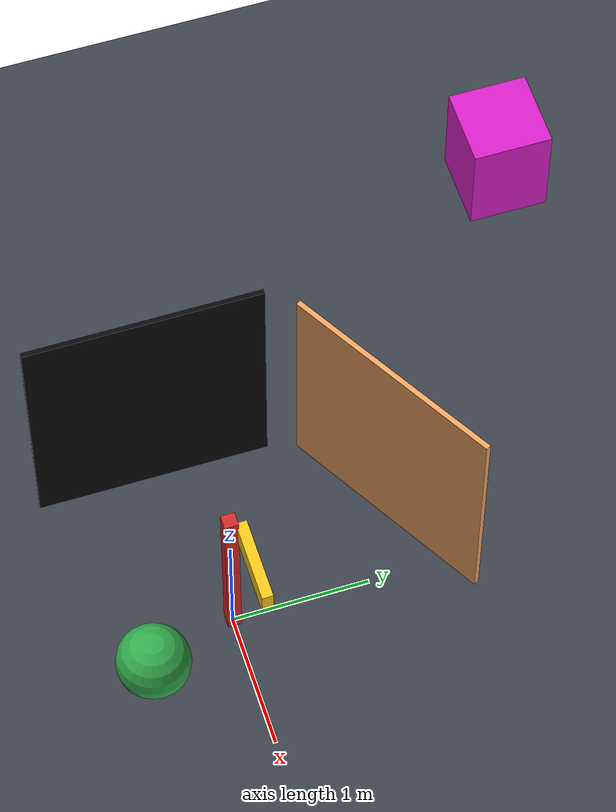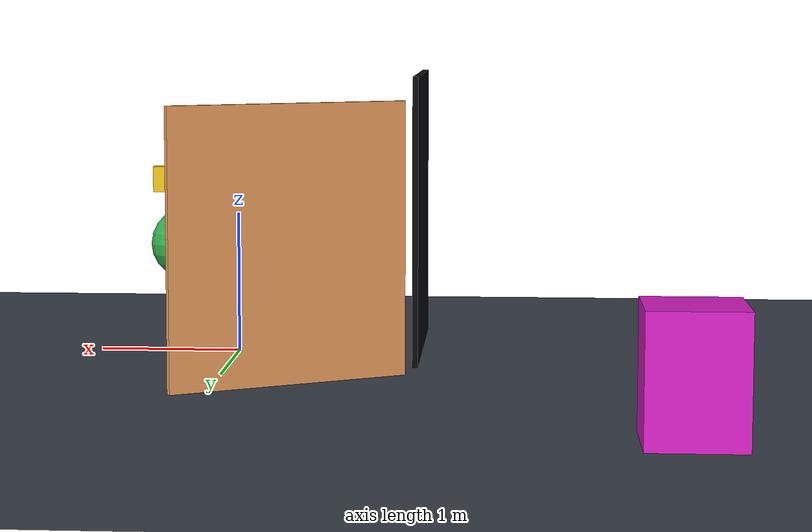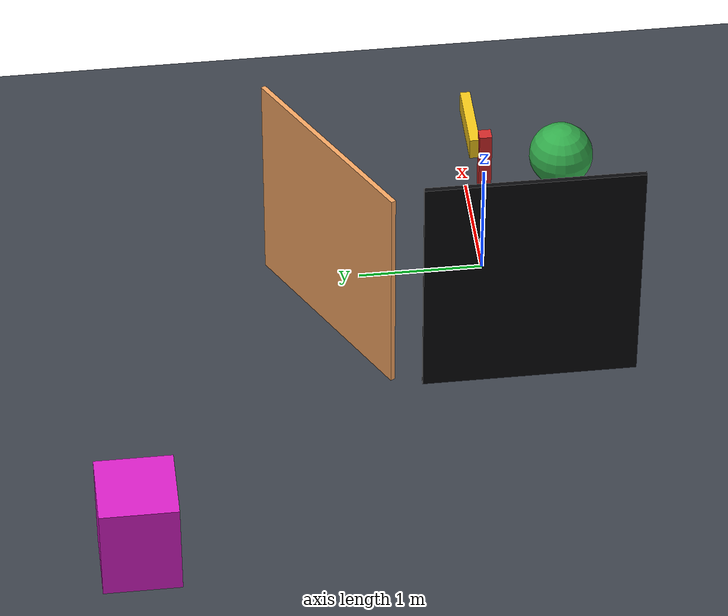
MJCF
<mujoco model="Reflection test">

  <visual>
    <global azimuth="130" elevation="-18"/>
    <quality shadowsize="8192"/>
  </visual>

  <asset>
    <texture name="sky" type="skybox" builtin="gradient" rgb1=".18 .22 .30" rgb2=".55 .58 .62" width="32" height="512"/>
    <texture name="ibl" type="cube" builtin="gradient" rgb1=".32 .35 .40" rgb2=".58 .56 .52" width="32" height="32"/>
    <texture name="grid" type="2d" builtin="checker" rgb1=".05 .06 .09" rgb2=".42 .45 .50" width="300" height="300"/>
    <!-- packed occlusion(R)/roughness(G)/metallic(B): smooth copper -->
    <texture name="orm" type="2d" builtin="flat" rgb1="1 .3 1" width="8" height="8"/>
    <material name="floor"  texture="grid" texrepeat="3 3" texuniform="true" reflectance=".5"/>
    <material name="mirror" rgba=".03 .03 .04 1" reflectance=".9" metallic="0" roughness=".04"/>
    <material name="copper_mirror" rgba=".95 .64 .38 1" reflectance=".9">
      <layer texture="orm" role="orm"/>
    </material>
    <material name="post"   rgba=".82 .16 .16 1"/>
    <material name="arm"    rgba=".95 .78 .10 1"/>
    <material name="ball"   rgba=".20 .68 .30 1"/>
    <material name="behind" rgba=".85 .12 .78 1"/>
  </asset>

  <worldbody>
    <light name="key" pos="1.8 0.6 3.0" dir="-0.7 -0.2 -2" cutoff="55" softness="1" range="20"
           intensity="900000" castshadow="true" ambient=".1 .1 .12" type="spot"/>
    <light type="image" texture="ibl" intensity="8000"/>

    <camera name="default" pos="3.839 -1.853 2.230" xyaxes="0.452 0.892 0.000 -0.238 0.121 0.964"/>

    <!-- checker rotated 30 deg about Z so the reflected grid makes swim/clipping obvious -->
    <geom name="floor" type="plane" size="5 5 .01" material="floor" euler="0 0 30"/>

    <!-- box MIRROR: vertical wall, thin along its normal (local +Z = world +X),
         viewed obliquely so it reflects the scene rather than empty space -->
    <geom name="mirror" type="box" size="1 0.85 0.02" material="mirror" pos="-1.3 -0.2 1" euler="0 90 0"/>

    <!-- copper PBR mirror (normal pointing along -Y towards scene) -->
    <geom name="copper_mirror" type="box" size="0.85 1 0.02" material="copper_mirror" pos="-0.5 1.3 0.85" euler="90 30 00"/>

    <geom name="post" type="box" material="post" size=".05 .05 .7" pos="0 0 0.7"/>
    <body name="arm_body" pos="0.3 0.08 1.25">
      <joint pos="-.3 0 0" axis="0 1 0"/>
      <geom name="arm"  type="box" material="arm"  size=".3 .04 .09" contype="0" conaffinity="0"/>
    </body>

    <!-- hovering ball: hard shadow disc on the floor + off-plane reflection -->
    <body name="ball_body" pos="0.5 -0.7 0.7">
      <freejoint/>
      <geom name="ball" type="sphere" material="ball" size=".26" priority="1" solref="-1e4 0"/>
    </body>

    <!-- box hidden BEHIND the mirror (x < -1.3): unseen by the camera directly, and
         it must not leak into the reflection either -->
    <geom name="behind" type="box" material="behind" size=".3 .3 .4" pos="-3 3 0.4"/>
  </worldbody>
</mujoco>
